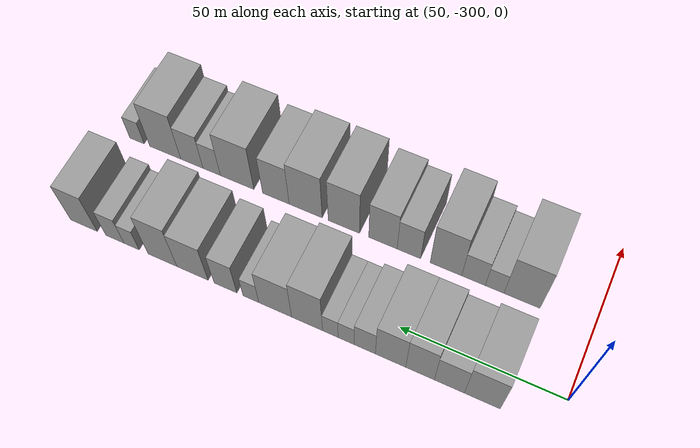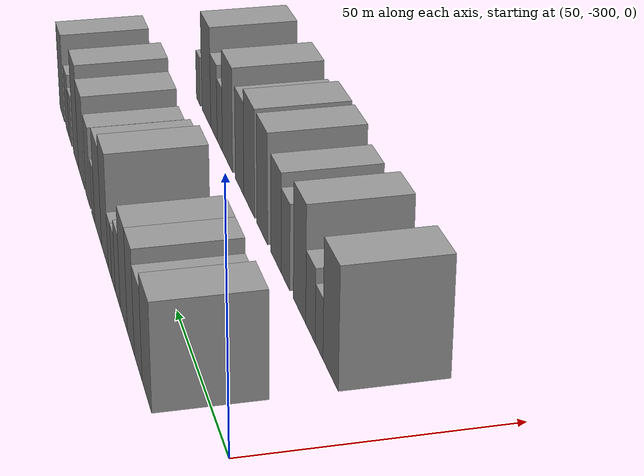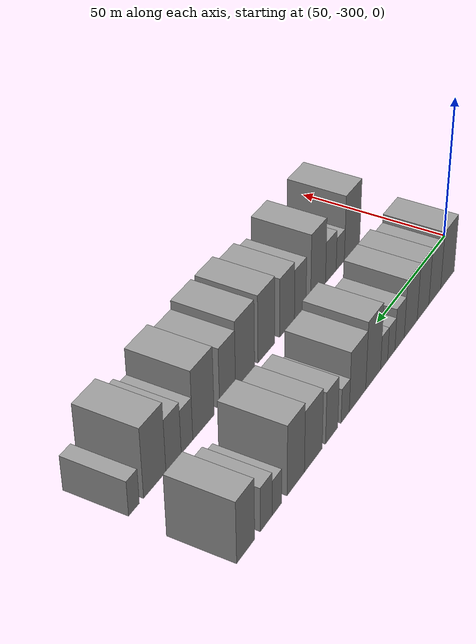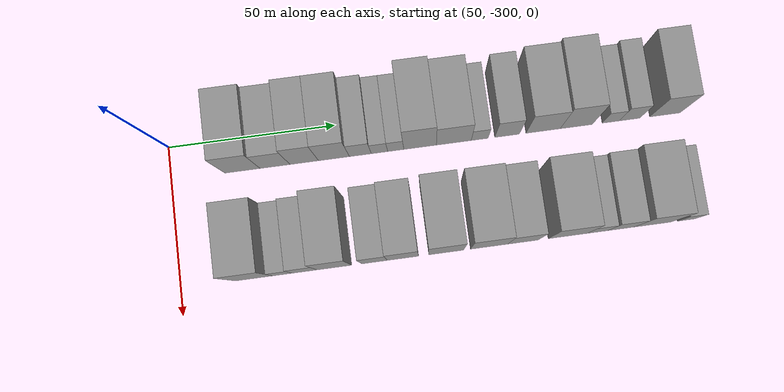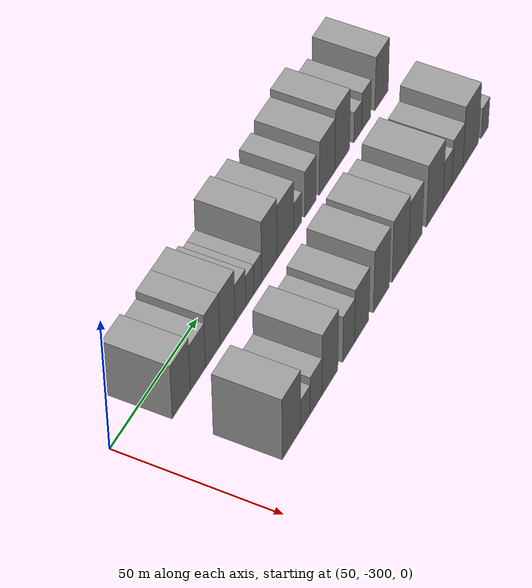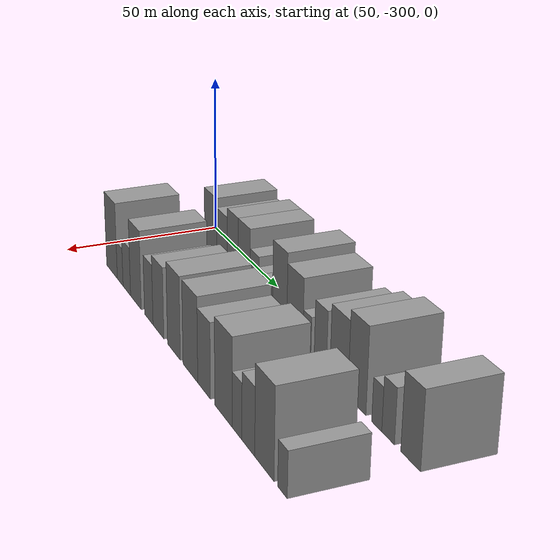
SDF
<sdf version="1.6">
 <world name="default">
  <model name="building_1">
   <static>1</static>
   <pose>50.0000 -278.7574 0 0.000000 0.000000 0.000000</pose>
   <link name="link">
    <pose>0 0 10.50 0 0 0</pose>
    <collision name="collision"><geometry><box><size>20.0000 10.4853 21.0000</size></box></geometry></collision>
    <visual name="visual">
     <cast_shadows>0</cast_shadows>
     <geometry><box><size>20.0000 10.4853 21.0000</size></box></geometry>
     <material>
      <script>
       <uri>model://grey_wall/materials/scripts</uri>
       <uri>model://grey_wall/materials/textures</uri>
       <name>vrc/grey_wall</name>
      </script>
     </material>
    </visual>
   </link>
  </model>
  <model name="building_2">
   <static>1</static>
   <pose>50.0000 -269.0719 0 0.000000 0.000000 0.000000</pose>
   <link name="link">
    <pose>0 0 9.00 0 0 0</pose>
    <collision name="collision"><geometry><box><size>20.0000 8.8856 18.0000</size></box></geometry></collision>
    <visual name="visual">
     <cast_shadows>0</cast_shadows>
     <geometry><box><size>20.0000 8.8856 18.0000</size></box></geometry>
     <material>
      <script>
       <uri>model://grey_wall/materials/scripts</uri>
       <uri>model://grey_wall/materials/textures</uri>
       <name>vrc/grey_wall</name>
      </script>
     </material>
    </visual>
   </link>
  </model>
  <model name="building_3">
   <static>1</static>
   <pose>50.0000 -260.3548 0 0.000000 0.000000 0.000000</pose>
   <link name="link">
    <pose>0 0 10.50 0 0 0</pose>
    <collision name="collision"><geometry><box><size>20.0000 8.5487 21.0000</size></box></geometry></collision>
    <visual name="visual">
     <cast_shadows>0</cast_shadows>
     <geometry><box><size>20.0000 8.5487 21.0000</size></box></geometry>
     <material>
      <script>
       <uri>model://grey_wall/materials/scripts</uri>
       <uri>model://grey_wall/materials/textures</uri>
       <name>vrc/grey_wall</name>
      </script>
     </material>
    </visual>
   </link>
  </model>
  <model name="building_4">
   <static>1</static>
   <pose>50.0000 -251.4700 0 0.000000 0.000000 0.000000</pose>
   <link name="link">
    <pose>0 0 10.50 0 0 0</pose>
    <collision name="collision"><geometry><box><size>20.0000 9.2208 21.0000</size></box></geometry></collision>
    <visual name="visual">
     <cast_shadows>0</cast_shadows>
     <geometry><box><size>20.0000 9.2208 21.0000</size></box></geometry>
     <material>
      <script>
       <uri>model://grey_wall/materials/scripts</uri>
       <uri>model://grey_wall/materials/textures</uri>
       <name>vrc/grey_wall</name>
      </script>
     </material>
    </visual>
   </link>
  </model>
  <model name="building_5">
   <static>1</static>
   <pose>50.0000 -243.5951 0 0.000000 0.000000 0.000000</pose>
   <link name="link">
    <pose>0 0 7.50 0 0 0</pose>
    <collision name="collision"><geometry><box><size>20.0000 6.5289 15.0000</size></box></geometry></collision>
    <visual name="visual">
     <cast_shadows>0</cast_shadows>
     <geometry><box><size>20.0000 6.5289 15.0000</size></box></geometry>
     <material>
      <script>
       <uri>model://grey_wall/materials/scripts</uri>
       <uri>model://grey_wall/materials/textures</uri>
       <name>vrc/grey_wall</name>
      </script>
     </material>
    </visual>
   </link>
  </model>
  <model name="building_6">
   <static>1</static>
   <pose>50.0000 -237.8679 0 0.000000 0.000000 0.000000</pose>
   <link name="link">
    <pose>0 0 6.00 0 0 0</pose>
    <collision name="collision"><geometry><box><size>20.0000 4.9256 12.0000</size></box></geometry></collision>
    <visual name="visual">
     <cast_shadows>0</cast_shadows>
     <geometry><box><size>20.0000 4.9256 12.0000</size></box></geometry>
     <material>
      <script>
       <uri>model://grey_wall/materials/scripts</uri>
       <uri>model://grey_wall/materials/textures</uri>
       <name>vrc/grey_wall</name>
      </script>
     </material>
    </visual>
   </link>
  </model>
  <model name="building_7">
   <static>1</static>
   <pose>50.0000 -233.0020 0 0.000000 0.000000 0.000000</pose>
   <link name="link">
    <pose>0 0 6.00 0 0 0</pose>
    <collision name="collision"><geometry><box><size>20.0000 4.8062 12.0000</size></box></geometry></collision>
    <visual name="visual">
     <cast_shadows>0</cast_shadows>
     <geometry><box><size>20.0000 4.8062 12.0000</size></box></geometry>
     <material>
      <script>
       <uri>model://grey_wall/materials/scripts</uri>
       <uri>model://grey_wall/materials/textures</uri>
       <name>vrc/grey_wall</name>
      </script>
     </material>
    </visual>
   </link>
  </model>
  <model name="building_8">
   <static>1</static>
   <pose>50.0000 -225.7242 0 0.000000 0.000000 0.000000</pose>
   <link name="link">
    <pose>0 0 12.00 0 0 0</pose>
    <collision name="collision"><geometry><box><size>20.0000 9.7495 24.0000</size></box></geometry></collision>
    <visual name="visual">
     <cast_shadows>0</cast_shadows>
     <geometry><box><size>20.0000 9.7495 24.0000</size></box></geometry>
     <material>
      <script>
       <uri>model://grey_wall/materials/scripts</uri>
       <uri>model://grey_wall/materials/textures</uri>
       <name>vrc/grey_wall</name>
      </script>
     </material>
    </visual>
   </link>
  </model>
  <model name="building_9">
   <static>1</static>
   <pose>50.0000 -215.6198 0 0.000000 0.000000 0.000000</pose>
   <link name="link">
    <pose>0 0 10.50 0 0 0</pose>
    <collision name="collision"><geometry><box><size>20.0000 10.4592 21.0000</size></box></geometry></collision>
    <visual name="visual">
     <cast_shadows>0</cast_shadows>
     <geometry><box><size>20.0000 10.4592 21.0000</size></box></geometry>
     <material>
      <script>
       <uri>model://grey_wall/materials/scripts</uri>
       <uri>model://grey_wall/materials/textures</uri>
       <name>vrc/grey_wall</name>
      </script>
     </material>
    </visual>
   </link>
  </model>
  <model name="building_10">
   <static>1</static>
   <pose>50.0000 -207.8413 0 0.000000 0.000000 0.000000</pose>
   <link name="link">
    <pose>0 0 6.00 0 0 0</pose>
    <collision name="collision"><geometry><box><size>20.0000 5.0979 12.0000</size></box></geometry></collision>
    <visual name="visual">
     <cast_shadows>0</cast_shadows>
     <geometry><box><size>20.0000 5.0979 12.0000</size></box></geometry>
     <material>
      <script>
       <uri>model://grey_wall/materials/scripts</uri>
       <uri>model://grey_wall/materials/textures</uri>
       <name>vrc/grey_wall</name>
      </script>
     </material>
    </visual>
   </link>
  </model>
  <model name="building_11">
   <static>1</static>
   <pose>50.0000 -199.5938 0 0.000000 0.000000 0.000000</pose>
   <link name="link">
    <pose>0 0 9.00 0 0 0</pose>
    <collision name="collision"><geometry><box><size>20.0000 7.3971 18.0000</size></box></geometry></collision>
    <visual name="visual">
     <cast_shadows>0</cast_shadows>
     <geometry><box><size>20.0000 7.3971 18.0000</size></box></geometry>
     <material>
      <script>
       <uri>model://grey_wall/materials/scripts</uri>
       <uri>model://grey_wall/materials/textures</uri>
       <name>vrc/grey_wall</name>
      </script>
     </material>
    </visual>
   </link>
  </model>
  <model name="building_12">
   <static>1</static>
   <pose>50.0000 -188.7349 0 0.000000 0.000000 0.000000</pose>
   <link name="link">
    <pose>0 0 10.50 0 0 0</pose>
    <collision name="collision"><geometry><box><size>20.0000 10.3207 21.0000</size></box></geometry></collision>
    <visual name="visual">
     <cast_shadows>0</cast_shadows>
     <geometry><box><size>20.0000 10.3207 21.0000</size></box></geometry>
     <material>
      <script>
       <uri>model://grey_wall/materials/scripts</uri>
       <uri>model://grey_wall/materials/textures</uri>
       <name>vrc/grey_wall</name>
      </script>
     </material>
    </visual>
   </link>
  </model>
  <model name="building_13">
   <static>1</static>
   <pose>50.0000 -178.7163 0 0.000000 0.000000 0.000000</pose>
   <link name="link">
    <pose>0 0 12.00 0 0 0</pose>
    <collision name="collision"><geometry><box><size>20.0000 9.7165 24.0000</size></box></geometry></collision>
    <visual name="visual">
     <cast_shadows>0</cast_shadows>
     <geometry><box><size>20.0000 9.7165 24.0000</size></box></geometry>
     <material>
      <script>
       <uri>model://grey_wall/materials/scripts</uri>
       <uri>model://grey_wall/materials/textures</uri>
       <name>vrc/grey_wall</name>
      </script>
     </material>
    </visual>
   </link>
  </model>
  <model name="building_14">
   <static>1</static>
   <pose>50.0000 -168.2957 0 0.000000 0.000000 0.000000</pose>
   <link name="link">
    <pose>0 0 6.00 0 0 0</pose>
    <collision name="collision"><geometry><box><size>20.0000 5.1247 12.0000</size></box></geometry></collision>
    <visual name="visual">
     <cast_shadows>0</cast_shadows>
     <geometry><box><size>20.0000 5.1247 12.0000</size></box></geometry>
     <material>
      <script>
       <uri>model://grey_wall/materials/scripts</uri>
       <uri>model://grey_wall/materials/textures</uri>
       <name>vrc/grey_wall</name>
      </script>
     </material>
    </visual>
   </link>
  </model>
  <model name="building_15">
   <static>1</static>
   <pose>50.0000 -162.6026 0 0.000000 0.000000 0.000000</pose>
   <link name="link">
    <pose>0 0 7.50 0 0 0</pose>
    <collision name="collision"><geometry><box><size>20.0000 6.2617 15.0000</size></box></geometry></collision>
    <visual name="visual">
     <cast_shadows>0</cast_shadows>
     <geometry><box><size>20.0000 6.2617 15.0000</size></box></geometry>
     <material>
      <script>
       <uri>model://grey_wall/materials/scripts</uri>
       <uri>model://grey_wall/materials/textures</uri>
       <name>vrc/grey_wall</name>
      </script>
     </material>
    </visual>
   </link>
  </model>
  <model name="building_16">
   <static>1</static>
   <pose>50.0000 -151.8582 0 0.000000 0.000000 0.000000</pose>
   <link name="link">
    <pose>0 0 10.50 0 0 0</pose>
    <collision name="collision"><geometry><box><size>20.0000 9.2272 21.0000</size></box></geometry></collision>
    <visual name="visual">
     <cast_shadows>0</cast_shadows>
     <geometry><box><size>20.0000 9.2272 21.0000</size></box></geometry>
     <material>
      <script>
       <uri>model://grey_wall/materials/scripts</uri>
       <uri>model://grey_wall/materials/textures</uri>
       <name>vrc/grey_wall</name>
      </script>
     </material>
    </visual>
   </link>
  </model>
  <model name="building_62">
   <static>1</static>
   <pose>82.0000 -278.5064 0 0.000000 0.000000 0.000000</pose>
   <link name="link">
    <pose>0 0 12.00 0 0 0</pose>
    <collision name="collision"><geometry><box><size>20.0000 10.9872 24.0000</size></box></geometry></collision>
    <visual name="visual">
     <cast_shadows>0</cast_shadows>
     <geometry><box><size>20.0000 10.9872 24.0000</size></box></geometry>
     <material>
      <script>
       <uri>model://grey_wall/materials/scripts</uri>
       <uri>model://grey_wall/materials/textures</uri>
       <name>vrc/grey_wall</name>
      </script>
     </material>
    </visual>
   </link>
  </model>
  <model name="building_63">
   <static>1</static>
   <pose>82.0000 -270.1554 0 0.000000 0.000000 0.000000</pose>
   <link name="link">
    <pose>0 0 6.00 0 0 0</pose>
    <collision name="collision"><geometry><box><size>20.0000 5.7147 12.0000</size></box></geometry></collision>
    <visual name="visual">
     <cast_shadows>0</cast_shadows>
     <geometry><box><size>20.0000 5.7147 12.0000</size></box></geometry>
     <material>
      <script>
       <uri>model://grey_wall/materials/scripts</uri>
       <uri>model://grey_wall/materials/textures</uri>
       <name>vrc/grey_wall</name>
      </script>
     </material>
    </visual>
   </link>
  </model>
  <model name="building_64">
   <static>1</static>
   <pose>82.0000 -263.6507 0 0.000000 0.000000 0.000000</pose>
   <link name="link">
    <pose>0 0 7.50 0 0 0</pose>
    <collision name="collision"><geometry><box><size>20.0000 7.2947 15.0000</size></box></geometry></collision>
    <visual name="visual">
     <cast_shadows>0</cast_shadows>
     <geometry><box><size>20.0000 7.2947 15.0000</size></box></geometry>
     <material>
      <script>
       <uri>model://grey_wall/materials/scripts</uri>
       <uri>model://grey_wall/materials/textures</uri>
       <name>vrc/grey_wall</name>
      </script>
     </material>
    </visual>
   </link>
  </model>
  <model name="building_65">
   <static>1</static>
   <pose>82.0000 -255.0314 0 0.000000 0.000000 0.000000</pose>
   <link name="link">
    <pose>0 0 12.00 0 0 0</pose>
    <collision name="collision"><geometry><box><size>20.0000 9.9439 24.0000</size></box></geometry></collision>
    <visual name="visual">
     <cast_shadows>0</cast_shadows>
     <geometry><box><size>20.0000 9.9439 24.0000</size></box></geometry>
     <material>
      <script>
       <uri>model://grey_wall/materials/scripts</uri>
       <uri>model://grey_wall/materials/textures</uri>
       <name>vrc/grey_wall</name>
      </script>
     </material>
    </visual>
   </link>
  </model>
  <model name="building_66">
   <static>1</static>
   <pose>82.0000 -243.3188 0 0.000000 0.000000 0.000000</pose>
   <link name="link">
    <pose>0 0 9.00 0 0 0</pose>
    <collision name="collision"><geometry><box><size>20.0000 7.4813 18.0000</size></box></geometry></collision>
    <visual name="visual">
     <cast_shadows>0</cast_shadows>
     <geometry><box><size>20.0000 7.4813 18.0000</size></box></geometry>
     <material>
      <script>
       <uri>model://grey_wall/materials/scripts</uri>
       <uri>model://grey_wall/materials/textures</uri>
       <name>vrc/grey_wall</name>
      </script>
     </material>
    </visual>
   </link>
  </model>
  <model name="building_67">
   <static>1</static>
   <pose>82.0000 -234.9915 0 0.000000 0.000000 0.000000</pose>
   <link name="link">
    <pose>0 0 10.50 0 0 0</pose>
    <collision name="collision"><geometry><box><size>20.0000 9.1733 21.0000</size></box></geometry></collision>
    <visual name="visual">
     <cast_shadows>0</cast_shadows>
     <geometry><box><size>20.0000 9.1733 21.0000</size></box></geometry>
     <material>
      <script>
       <uri>model://grey_wall/materials/scripts</uri>
       <uri>model://grey_wall/materials/textures</uri>
       <name>vrc/grey_wall</name>
      </script>
     </material>
    </visual>
   </link>
  </model>
  <model name="building_68">
   <static>1</static>
   <pose>82.0000 -222.2801 0 0.000000 0.000000 0.000000</pose>
   <link name="link">
    <pose>0 0 12.00 0 0 0</pose>
    <collision name="collision"><geometry><box><size>20.0000 10.2495 24.0000</size></box></geometry></collision>
    <visual name="visual">
     <cast_shadows>0</cast_shadows>
     <geometry><box><size>20.0000 10.2495 24.0000</size></box></geometry>
     <material>
      <script>
       <uri>model://grey_wall/materials/scripts</uri>
       <uri>model://grey_wall/materials/textures</uri>
       <name>vrc/grey_wall</name>
      </script>
     </material>
    </visual>
   </link>
  </model>
  <model name="building_69">
   <static>1</static>
   <pose>82.0000 -209.6443 0 0.000000 0.000000 0.000000</pose>
   <link name="link">
    <pose>0 0 12.00 0 0 0</pose>
    <collision name="collision"><geometry><box><size>20.0000 11.0221 24.0000</size></box></geometry></collision>
    <visual name="visual">
     <cast_shadows>0</cast_shadows>
     <geometry><box><size>20.0000 11.0221 24.0000</size></box></geometry>
     <material>
      <script>
       <uri>model://grey_wall/materials/scripts</uri>
       <uri>model://grey_wall/materials/textures</uri>
       <name>vrc/grey_wall</name>
      </script>
     </material>
    </visual>
   </link>
  </model>
  <model name="building_70">
   <static>1</static>
   <pose>82.0000 -199.6483 0 0.000000 0.000000 0.000000</pose>
   <link name="link">
    <pose>0 0 10.50 0 0 0</pose>
    <collision name="collision"><geometry><box><size>20.0000 8.9700 21.0000</size></box></geometry></collision>
    <visual name="visual">
     <cast_shadows>0</cast_shadows>
     <geometry><box><size>20.0000 8.9700 21.0000</size></box></geometry>
     <material>
      <script>
       <uri>model://grey_wall/materials/scripts</uri>
       <uri>model://grey_wall/materials/textures</uri>
       <name>vrc/grey_wall</name>
      </script>
     </material>
    </visual>
   </link>
  </model>
  <model name="building_71">
   <static>1</static>
   <pose>82.0000 -186.4171 0 0.000000 0.000000 0.000000</pose>
   <link name="link">
    <pose>0 0 12.00 0 0 0</pose>
    <collision name="collision"><geometry><box><size>20.0000 11.4924 24.0000</size></box></geometry></collision>
    <visual name="visual">
     <cast_shadows>0</cast_shadows>
     <geometry><box><size>20.0000 11.4924 24.0000</size></box></geometry>
     <material>
      <script>
       <uri>model://grey_wall/materials/scripts</uri>
       <uri>model://grey_wall/materials/textures</uri>
       <name>vrc/grey_wall</name>
      </script>
     </material>
    </visual>
   </link>
  </model>
  <model name="building_72">
   <static>1</static>
   <pose>82.0000 -177.6485 0 0.000000 0.000000 0.000000</pose>
   <link name="link">
    <pose>0 0 7.50 0 0 0</pose>
    <collision name="collision"><geometry><box><size>20.0000 6.0447 15.0000</size></box></geometry></collision>
    <visual name="visual">
     <cast_shadows>0</cast_shadows>
     <geometry><box><size>20.0000 6.0447 15.0000</size></box></geometry>
     <material>
      <script>
       <uri>model://grey_wall/materials/scripts</uri>
       <uri>model://grey_wall/materials/textures</uri>
       <name>vrc/grey_wall</name>
      </script>
     </material>
    </visual>
   </link>
  </model>
  <model name="building_73">
   <static>1</static>
   <pose>82.0000 -170.7185 0 0.000000 0.000000 0.000000</pose>
   <link name="link">
    <pose>0 0 9.00 0 0 0</pose>
    <collision name="collision"><geometry><box><size>20.0000 7.8152 18.0000</size></box></geometry></collision>
    <visual name="visual">
     <cast_shadows>0</cast_shadows>
     <geometry><box><size>20.0000 7.8152 18.0000</size></box></geometry>
     <material>
      <script>
       <uri>model://grey_wall/materials/scripts</uri>
       <uri>model://grey_wall/materials/textures</uri>
       <name>vrc/grey_wall</name>
      </script>
     </material>
    </visual>
   </link>
  </model>
  <model name="building_74">
   <static>1</static>
   <pose>82.0000 -161.2894 0 0.000000 0.000000 0.000000</pose>
   <link name="link">
    <pose>0 0 12.00 0 0 0</pose>
    <collision name="collision"><geometry><box><size>20.0000 11.0430 24.0000</size></box></geometry></collision>
    <visual name="visual">
     <cast_shadows>0</cast_shadows>
     <geometry><box><size>20.0000 11.0430 24.0000</size></box></geometry>
     <material>
      <script>
       <uri>model://grey_wall/materials/scripts</uri>
       <uri>model://grey_wall/materials/textures</uri>
       <name>vrc/grey_wall</name>
      </script>
     </material>
    </visual>
   </link>
  </model>
  <model name="building_75">
   <static>1</static>
   <pose>82.0000 -151.1847 0 0.000000 0.000000 0.000000</pose>
   <link name="link">
    <pose>0 0 6.00 0 0 0</pose>
    <collision name="collision"><geometry><box><size>20.0000 5.1665 12.0000</size></box></geometry></collision>
    <visual name="visual">
     <cast_shadows>0</cast_shadows>
     <geometry><box><size>20.0000 5.1665 12.0000</size></box></geometry>
     <material>
      <script>
       <uri>model://grey_wall/materials/scripts</uri>
       <uri>model://grey_wall/materials/textures</uri>
       <name>vrc/grey_wall</name>
      </script>
     </material>
    </visual>
   </link>
  </model>
 </world>
</sdf>
